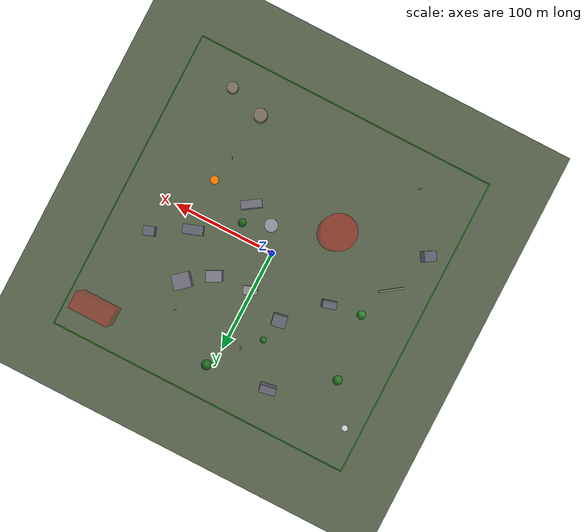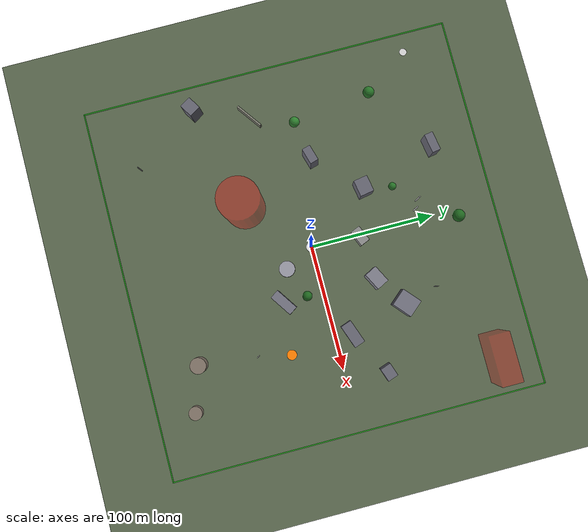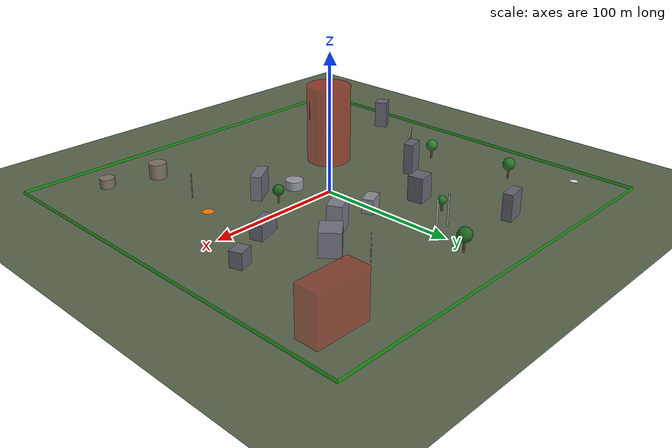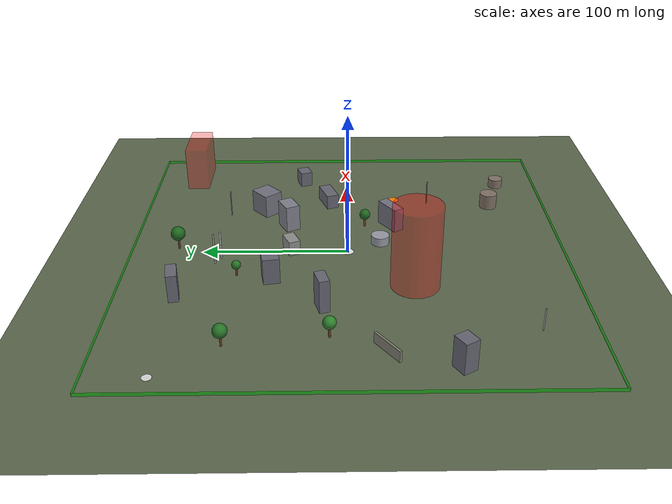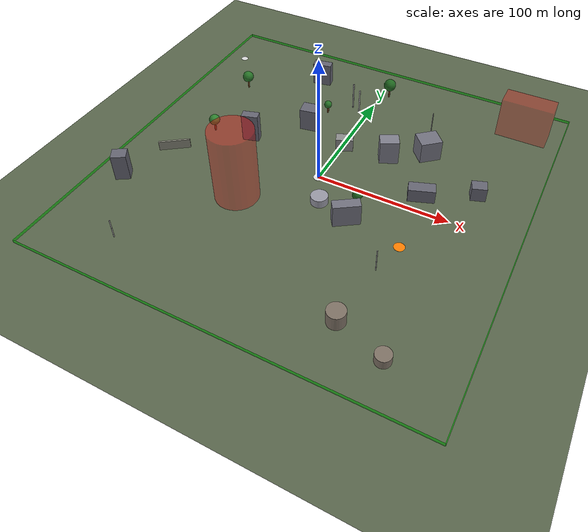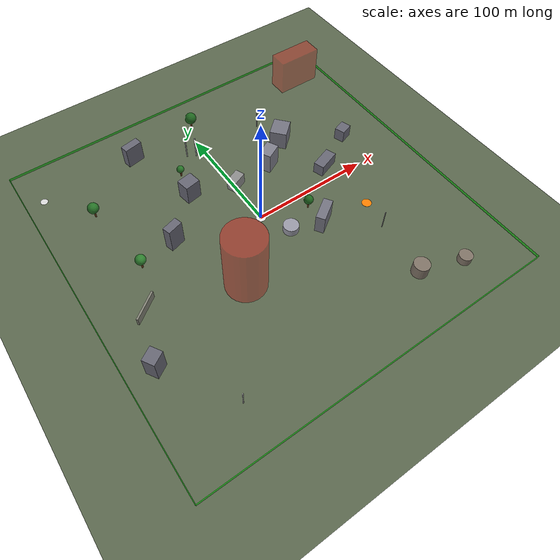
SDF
<?xml version="1.0" ?>
<sdf version="1.9">
  <!--
  Generated World: training_variant_011
  Seed: 53
  Difficulty: medium
  Obstacles: 24
  NFZs: 2
  Generated: 2025-12-27T10:39:35.583986
  Generator: Flyby F-11 World Generator v1.0.0
-->
  <world name="training_variant_011">
    <physics name="training_physics" type="ode">
      <max_step_size>0.001</max_step_size>
      <real_time_factor>1.0</real_time_factor>
      <real_time_update_rate>1000</real_time_update_rate>
      <ode>
        <solver>
          <type>quick</type>
          <iters>50</iters>
          <sor>1.3</sor>
        </solver>
        <constraints>
          <cfm>0.0</cfm>
          <erp>0.2</erp>
        </constraints>
      </ode>
    </physics>
    <plugin filename="gz-sim-physics-system" name="gz::sim::systems::Physics"/>
    <plugin filename="gz-sim-sensors-system" name="gz::sim::systems::Sensors">
      <render_engine>ogre2</render_engine>
    </plugin>
    <plugin filename="gz-sim-scene-broadcaster-system" name="gz::sim::systems::SceneBroadcaster"/>
    <plugin filename="gz-sim-user-commands-system" name="gz::sim::systems::UserCommands"/>
    <plugin filename="gz-sim-imu-system" name="gz::sim::systems::Imu"/>
    <plugin filename="gz-sim-air-pressure-system" name="gz::sim::systems::AirPressure"/>
    <plugin filename="gz-sim-magnetometer-system" name="gz::sim::systems::Magnetometer"/>
    <plugin filename="gz-sim-navsat-system" name="gz::sim::systems::NavSat"/>
    <plugin filename="gz-sim-contact-system" name="gz::sim::systems::Contact"/>
    <plugin filename="gz-sim-wind-effects-system" name="gz::sim::systems::WindEffects">
      <force_approximation_scaling_factor>1.0</force_approximation_scaling_factor>
    </plugin>
    <atmosphere type="adiabatic">
      <temperature>288.15</temperature>
      <pressure>101325</pressure>
      <mass_density>1.225</mass_density>
    </atmosphere>
    <wind>
      <linear_velocity>4.860900360746789 -0.9096997503502364 0</linear_velocity>
    </wind>
    <spherical_coordinates>
      <surface_model>EARTH_WGS84</surface_model>
      <world_frame_orientation>ENU</world_frame_orientation>
      <latitude_deg>33.3853</latitude_deg>
      <longitude_deg>-117.5653</longitude_deg>
      <elevation>100</elevation>
      <heading_deg>0</heading_deg>
    </spherical_coordinates>
    <scene>
      <ambient>0.5 0.5 0.52 1</ambient>
      <background>0.6 0.6 0.65 1</background>
      <shadows>true</shadows>
      <grid>false</grid>
    </scene>
    <light type="directional" name="sun">
      <cast_shadows>true</cast_shadows>
      <pose>0 0 100 0 0 0</pose>
      <diffuse>0.5 0.5 0.55 1</diffuse>
      <specular>0.05 0.05 0.05 1</specular>
      <attenuation>
        <range>1000</range>
        <constant>0.9</constant>
        <linear>0.01</linear>
        <quadratic>0.001</quadratic>
      </attenuation>
      <direction>-0.3 0.0 -0.95</direction>
    </light>
    <model name="ground_plane">
      <static>true</static>
      <link name="link">
        <collision name="collision">
          <geometry>
            <plane>
              <normal>0 0 1</normal>
              <size>500 500</size>
            </plane>
          </geometry>
          <surface>
            <friction>
              <ode>
                <mu>100</mu>
                <mu2>50</mu2>
              </ode>
            </friction>
          </surface>
        </collision>
        <visual name="visual">
          <geometry>
            <plane>
              <normal>0 0 1</normal>
              <size>500 500</size>
            </plane>
          </geometry>
          <material>
            <ambient>0.35 0.4 0.3 1</ambient>
            <diffuse>0.35 0.4 0.3 1</diffuse>
          </material>
        </visual>
      </link>
    </model>
    <model name="geofence_north">
      <static>true</static>
      <pose>0 150.0 1 0 0 0</pose>
      <link name="link">
        <visual name="visual">
          <geometry>
            <box>
              <size>300.0 0.5 2</size>
            </box>
          </geometry>
          <material>
            <ambient>0 0.8 0 0.6</ambient>
            <diffuse>0 0.8 0 0.6</diffuse>
            <emissive>0 0.2 0 1</emissive>
          </material>
        </visual>
      </link>
    </model>
    <model name="geofence_south">
      <static>true</static>
      <pose>0 -150.0 1 0 0 0</pose>
      <link name="link">
        <visual name="visual">
          <geometry>
            <box>
              <size>300.0 0.5 2</size>
            </box>
          </geometry>
          <material>
            <ambient>0 0.8 0 0.6</ambient>
            <diffuse>0 0.8 0 0.6</diffuse>
            <emissive>0 0.2 0 1</emissive>
          </material>
        </visual>
      </link>
    </model>
    <model name="geofence_east">
      <static>true</static>
      <pose>150.0 0 1 0 0 0</pose>
      <link name="link">
        <visual name="visual">
          <geometry>
            <box>
              <size>0.5 300.0 2</size>
            </box>
          </geometry>
          <material>
            <ambient>0 0.8 0 0.6</ambient>
            <diffuse>0 0.8 0 0.6</diffuse>
            <emissive>0 0.2 0 1</emissive>
          </material>
        </visual>
      </link>
    </model>
    <model name="geofence_west">
      <static>true</static>
      <pose>-150.0 0 1 0 0 0</pose>
      <link name="link">
        <visual name="visual">
          <geometry>
            <box>
              <size>0.5 300.0 2</size>
            </box>
          </geometry>
          <material>
            <ambient>0 0.8 0 0.6</ambient>
            <diffuse>0 0.8 0 0.6</diffuse>
            <emissive>0 0.2 0 1</emissive>
          </material>
        </visual>
      </link>
    </model>
    <model name="nfz_0_volume">
      <static>true</static>
      <pose>119.81907579319137 117.8077624664382 16.410086100990988 0 0 0</pose>
      <link name="link">
        <visual name="visual">
          <geometry>
            <box>
              <size>38.690831125083236 16.396478807747922 32.820172201981975</size>
            </box>
          </geometry>
          <material>
            <ambient>1 0 0 0.30000000000000004</ambient>
            <diffuse>1 0 0 0.30000000000000004</diffuse>
          </material>
        </visual>
      </link>
    </model>
    <model name="nfz_1_volume">
      <static>true</static>
      <pose>-43.12063186510416 -43.09219478059349 29.197502244403942 0 0 0</pose>
      <link name="link">
        <visual name="visual">
          <geometry>
            <cylinder>
              <radius>16.319459696821163</radius>
              <length>58.395004488807885</length>
            </cylinder>
          </geometry>
          <material>
            <ambient>1 0 0 0.35000000000000003</ambient>
            <diffuse>1 0 0 0.35000000000000003</diffuse>
          </material>
        </visual>
      </link>
    </model>
    <model name="obstacle_building_0">
      <static>true</static>
      <pose>61.608266361428434 60.07814140728067 8.42475853537022 0 0 0.7157476047398533</pose>
      <link name="link">
        <visual name="visual">
          <geometry>
            <box>
              <size>16.536857111695035 14.432831730404095 16.84951707074044</size>
            </box>
          </geometry>
          <material>
            <ambient>0.45 0.45 0.5 1.0</ambient>
            <diffuse>0.45 0.45 0.5 1.0</diffuse>
          </material>
        </visual>
        <collision name="collision">
          <geometry>
            <box>
              <size>16.536857111695035 14.432831730404095 16.84951707074044</size>
            </box>
          </geometry>
        </collision>
      </link>
    </model>
    <model name="obstacle_tank_1">
      <static>true</static>
      <pose>102.5505160129756 -119.52597884871443 3.3970949037596143 0 0 0.0</pose>
      <link name="link">
        <visual name="visual">
          <geometry>
            <cylinder>
              <radius>5.375048302018703</radius>
              <length>6.794189807519229</length>
            </cylinder>
          </geometry>
          <material>
            <ambient>0.5 0.45 0.4 1.0</ambient>
            <diffuse>0.5 0.45 0.4 1.0</diffuse>
          </material>
        </visual>
        <collision name="collision">
          <geometry>
            <cylinder>
              <radius>5.375048302018703</radius>
              <length>6.794189807519229</length>
            </cylinder>
          </geometry>
        </collision>
      </link>
    </model>
    <model name="obstacle_building_2">
      <static>true</static>
      <pose>2.0110238378618988 39.213941318960536 5.17468710232682 0 0 0.40178330359084236</pose>
      <link name="link">
        <visual name="visual">
          <geometry>
            <box>
              <size>13.290995883781259 8.059333034893665 10.34937420465364</size>
            </box>
          </geometry>
          <material>
            <ambient>0.55 0.55 0.55 1.0</ambient>
            <diffuse>0.55 0.55 0.55 1.0</diffuse>
          </material>
        </visual>
        <collision name="collision">
          <geometry>
            <box>
              <size>13.290995883781259 8.059333034893665 10.34937420465364</size>
            </box>
          </geometry>
        </collision>
      </link>
    </model>
    <model name="obstacle_building_3">
      <static>true</static>
      <pose>74.44807370472245 13.826433756692666 5.302376384059566 0 0 0.34512397335980083</pose>
      <link name="link">
        <visual name="visual">
          <geometry>
            <box>
              <size>19.295402740396746 8.990592259950464 10.604752768119132</size>
            </box>
          </geometry>
          <material>
            <ambient>0.4 0.4 0.45 1.0</ambient>
            <diffuse>0.4 0.4 0.45 1.0</diffuse>
          </material>
        </visual>
        <collision name="collision">
          <geometry>
            <box>
              <size>19.295402740396746 8.990592259950464 10.604752768119132</size>
            </box>
          </geometry>
        </collision>
      </link>
    </model>
    <model name="obstacle_pole_4">
      <static>true</static>
      <pose>-14.616612662321614 90.28783693584194 11.29453558667725 0 0 0.0</pose>
      <link name="link">
        <visual name="visual">
          <geometry>
            <cylinder>
              <radius>0.5331058595074797</radius>
              <length>22.5890711733545</length>
            </cylinder>
          </geometry>
          <material>
            <ambient>0.65 0.65 0.65 1.0</ambient>
            <diffuse>0.65 0.65 0.65 1.0</diffuse>
          </material>
        </visual>
        <collision name="collision">
          <geometry>
            <cylinder>
              <radius>0.5331058595074797</radius>
              <length>22.5890711733545</length>
            </cylinder>
          </geometry>
        </collision>
      </link>
    </model>
    <model name="obstacle_tank_5">
      <static>true</static>
      <pose>67.51434082729043 -108.1079146131677 5.516387996705905 0 0 0.0</pose>
      <link name="link">
        <visual name="visual">
          <geometry>
            <cylinder>
              <radius>6.368759869269907</radius>
              <length>11.03277599341181</length>
            </cylinder>
          </geometry>
          <material>
            <ambient>0.5 0.45 0.4 1.0</ambient>
            <diffuse>0.5 0.45 0.4 1.0</diffuse>
          </material>
        </visual>
        <collision name="collision">
          <geometry>
            <cylinder>
              <radius>6.368759869269907</radius>
              <length>11.03277599341181</length>
            </cylinder>
          </geometry>
        </collision>
      </link>
    </model>
    <model name="obstacle_wall_6">
      <static>true</static>
      <pose>-113.75856720396794 -21.270017175769198 3.7709058352163676 0 0 0.6256711962694244</pose>
      <link name="link">
        <visual name="visual">
          <geometry>
            <box>
              <size>23.76689825911854 1.5482638130177913 7.541811670432735</size>
            </box>
          </geometry>
          <material>
            <ambient>0.5 0.5 0.45 1.0</ambient>
            <diffuse>0.5 0.5 0.45 1.0</diffuse>
          </material>
        </visual>
        <collision name="collision">
          <geometry>
            <box>
              <size>23.76689825911854 1.5482638130177913 7.541811670432735</size>
            </box>
          </geometry>
        </collision>
      </link>
    </model>
    <model name="obstacle_tree_7">
      <static>true</static>
      <pose>6.239547863991618 117.8460707905652 0 0 0 0.0</pose>
      <link name="link">
        <visual name="trunk">
          <pose>0 0 4.422929701693901 0 0 0</pose>
          <geometry>
            <cylinder>
              <radius>0.6922431365371942</radius>
              <length>8.845859403387802</length>
            </cylinder>
          </geometry>
          <material>
            <ambient>0.38 0.22 0.08 1.0</ambient>
            <diffuse>0.38 0.22 0.08 1.0</diffuse>
          </material>
        </visual>
        <visual name="canopy">
          <pose>0 0 11.82923169042134 0 0 0</pose>
          <geometry>
            <sphere>
              <radius>4.972287145055896</radius>
            </sphere>
          </geometry>
          <material>
            <ambient>0.12 0.4 0.12 1.0</ambient>
            <diffuse>0.12 0.4 0.12 1.0</diffuse>
          </material>
        </visual>
        <collision name="collision">
          <pose>0 0 9.395216846749797 0 0 0</pose>
          <geometry>
            <cylinder>
              <radius>4.972287145055896</radius>
              <length>18.790433693499594</length>
            </cylinder>
          </geometry>
        </collision>
      </link>
    </model>
    <model name="obstacle_building_8">
      <static>true</static>
      <pose>-53.866644110794724 111.92696065927143 9.545964882523798 0 0 0.17978061153353173</pose>
      <link name="link">
        <visual name="visual">
          <geometry>
            <box>
              <size>15.238997218203021 6.8691264961808844 19.091929765047595</size>
            </box>
          </geometry>
          <material>
            <ambient>0.4 0.4 0.45 1.0</ambient>
            <diffuse>0.4 0.4 0.45 1.0</diffuse>
          </material>
        </visual>
        <collision name="collision">
          <geometry>
            <box>
              <size>15.238997218203021 6.8691264961808844 19.091929765047595</size>
            </box>
          </geometry>
        </collision>
      </link>
    </model>
    <model name="obstacle_building_9">
      <static>true</static>
      <pose>109.8007677984287 33.36819911703864 5.626663945798909 0 0 0.3346379710743986</pose>
      <link name="link">
        <visual name="visual">
          <geometry>
            <box>
              <size>10.85228296463404 8.799890280612086 11.253327891597818</size>
            </box>
          </geometry>
          <material>
            <ambient>0.4 0.4 0.45 1.0</ambient>
            <diffuse>0.4 0.4 0.45 1.0</diffuse>
          </material>
        </visual>
        <collision name="collision">
          <geometry>
            <box>
              <size>10.85228296463404 8.799890280612086 11.253327891597818</size>
            </box>
          </geometry>
        </collision>
      </link>
    </model>
    <model name="obstacle_pole_10">
      <static>true</static>
      <pose>72.60279634420502 -61.31435777602037 9.160518204190167 0 0 0.0</pose>
      <link name="link">
        <visual name="visual">
          <geometry>
            <cylinder>
              <radius>0.36515546939099697</radius>
              <length>18.321036408380333</length>
            </cylinder>
          </geometry>
          <material>
            <ambient>0.7 0.7 0.7 1.0</ambient>
            <diffuse>0.7 0.7 0.7 1.0</diffuse>
          </material>
        </visual>
        <collision name="collision">
          <geometry>
            <cylinder>
              <radius>0.36515546939099697</radius>
              <length>18.321036408380333</length>
            </cylinder>
          </geometry>
        </collision>
      </link>
    </model>
    <model name="obstacle_building_11">
      <static>true</static>
      <pose>-67.95120868011612 17.045637541620607 11.425585930034597 0 0 0.2823512719812024</pose>
      <link name="link">
        <visual name="visual">
          <geometry>
            <box>
              <size>12.930201550592775 6.866953451541797 22.851171860069194</size>
            </box>
          </geometry>
          <material>
            <ambient>0.4 0.4 0.45 1.0</ambient>
            <diffuse>0.4 0.4 0.45 1.0</diffuse>
          </material>
        </visual>
        <collision name="collision">
          <geometry>
            <box>
              <size>12.930201550592775 6.866953451541797 22.851171860069194</size>
            </box>
          </geometry>
        </collision>
      </link>
    </model>
    <model name="obstacle_pole_12">
      <static>true</static>
      <pose>-7.5793262181643115 86.81758118939459 10.349045865840303 0 0 0.0</pose>
      <link name="link">
        <visual name="visual">
          <geometry>
            <cylinder>
              <radius>0.5378067439584823</radius>
              <length>20.698091731680606</length>
            </cylinder>
          </geometry>
          <material>
            <ambient>0.75 0.75 0.75 1.0</ambient>
            <diffuse>0.75 0.75 0.75 1.0</diffuse>
          </material>
        </visual>
        <collision name="collision">
          <geometry>
            <cylinder>
              <radius>0.5378067439584823</radius>
              <length>20.698091731680606</length>
            </cylinder>
          </geometry>
        </collision>
      </link>
    </model>
    <model name="obstacle_building_13">
      <static>true</static>
      <pose>37.16111998031366 -31.579420126100572 8.707544462651065 0 0 0.591706496968713</pose>
      <link name="link">
        <visual name="visual">
          <geometry>
            <box>
              <size>19.63996736629393 7.634496117520732 17.41508892530213</size>
            </box>
          </geometry>
          <material>
            <ambient>0.45 0.45 0.5 1.0</ambient>
            <diffuse>0.45 0.45 0.5 1.0</diffuse>
          </material>
        </visual>
        <collision name="collision">
          <geometry>
            <box>
              <size>19.63996736629393 7.634496117520732 17.41508892530213</size>
            </box>
          </geometry>
        </collision>
      </link>
    </model>
    <model name="obstacle_building_14">
      <static>true</static>
      <pose>37.09319249059658 42.36388746679137 9.621728526706415 0 0 0.47403992390117516</pose>
      <link name="link">
        <visual name="visual">
          <geometry>
            <box>
              <size>14.383533399897393 10.320670130215772 19.24345705341283</size>
            </box>
          </geometry>
          <material>
            <ambient>0.5 0.5 0.55 1.0</ambient>
            <diffuse>0.5 0.5 0.55 1.0</diffuse>
          </material>
        </visual>
        <collision name="collision">
          <geometry>
            <box>
              <size>14.383533399897393 10.320670130215772 19.24345705341283</size>
            </box>
          </geometry>
        </collision>
      </link>
    </model>
    <model name="obstacle_building_15">
      <static>true</static>
      <pose>-128.66783792945537 -63.803684148789216 10.431159784753104 0 0 0.5482801068160926</pose>
      <link name="link">
        <visual name="visual">
          <geometry>
            <box>
              <size>10.97091665232414 9.728179574034042 20.86231956950621</size>
            </box>
          </geometry>
          <material>
            <ambient>0.4 0.4 0.45 1.0</ambient>
            <diffuse>0.4 0.4 0.45 1.0</diffuse>
          </material>
        </visual>
        <collision name="collision">
          <geometry>
            <box>
              <size>10.97091665232414 9.728179574034042 20.86231956950621</size>
            </box>
          </geometry>
        </collision>
      </link>
    </model>
    <model name="obstacle_tree_16">
      <static>true</static>
      <pose>-29.781676385877347 74.13522729472527 0 0 0 0.0</pose>
      <link name="link">
        <visual name="trunk">
          <pose>0 0 3.094716456260445 0 0 0</pose>
          <geometry>
            <cylinder>
              <radius>0.694746179512373</radius>
              <length>6.18943291252089</length>
            </cylinder>
          </geometry>
          <material>
            <ambient>0.38 0.22 0.08 1.0</ambient>
            <diffuse>0.38 0.22 0.08 1.0</diffuse>
          </material>
        </visual>
        <visual name="canopy">
          <pose>0 0 8.054256647052242 0 0 0</pose>
          <geometry>
            <sphere>
              <radius>3.1080395575522526</radius>
            </sphere>
          </geometry>
          <material>
            <ambient>0.15 0.45 0.15 1.0</ambient>
            <diffuse>0.15 0.45 0.15 1.0</diffuse>
          </material>
        </visual>
        <collision name="collision">
          <pose>0 0 6.202756013812698 0 0 0</pose>
          <geometry>
            <cylinder>
              <radius>3.1080395575522526</radius>
              <length>12.405512027625395</length>
            </cylinder>
          </geometry>
        </collision>
      </link>
    </model>
    <model name="obstacle_tree_17">
      <static>true</static>
      <pose>-107.05197794171076 75.33246104212577 0 0 0 0.0</pose>
      <link name="link">
        <visual name="trunk">
          <pose>0 0 4.091573249904827 0 0 0</pose>
          <geometry>
            <cylinder>
              <radius>0.6425513708798758</radius>
              <length>8.183146499809654</length>
            </cylinder>
          </geometry>
          <material>
            <ambient>0.4 0.25 0.1 1.0</ambient>
            <diffuse>0.4 0.25 0.1 1.0</diffuse>
          </material>
        </visual>
        <visual name="canopy">
          <pose>0 0 10.920529038678218 0 0 0</pose>
          <geometry>
            <sphere>
              <radius>4.562304231447607</radius>
            </sphere>
          </geometry>
          <material>
            <ambient>0.15 0.45 0.15 1.0</ambient>
            <diffuse>0.15 0.45 0.15 1.0</diffuse>
          </material>
        </visual>
        <collision name="collision">
          <pose>0 0 8.653877481352435 0 0 0</pose>
          <geometry>
            <cylinder>
              <radius>4.562304231447607</radius>
              <length>17.30775496270487</length>
            </cylinder>
          </geometry>
        </collision>
      </link>
    </model>
    <model name="obstacle_tank_18">
      <static>true</static>
      <pose>12.339955651571216 -22.906401190559592 3.156473399910508 0 0 0.0</pose>
      <link name="link">
        <visual name="visual">
          <geometry>
            <cylinder>
              <radius>6.330062746574239</radius>
              <length>6.312946799821016</length>
            </cylinder>
          </geometry>
          <material>
            <ambient>0.6 0.6 0.65 1.0</ambient>
            <diffuse>0.6 0.6 0.65 1.0</diffuse>
          </material>
        </visual>
        <collision name="collision">
          <geometry>
            <cylinder>
              <radius>6.330062746574239</radius>
              <length>6.312946799821016</length>
            </cylinder>
          </geometry>
        </collision>
      </link>
    </model>
    <model name="obstacle_tree_19">
      <static>true</static>
      <pose>-98.89143914821766 12.157584970686656 0 0 0 0.0</pose>
      <link name="link">
        <visual name="trunk">
          <pose>0 0 3.8703481077030086 0 0 0</pose>
          <geometry>
            <cylinder>
              <radius>0.7400534422511307</radius>
              <length>7.740696215406017</length>
            </cylinder>
          </geometry>
          <material>
            <ambient>0.4 0.25 0.1 1.0</ambient>
            <diffuse>0.4 0.25 0.1 1.0</diffuse>
          </material>
        </visual>
        <visual name="canopy">
          <pose>0 0 10.271501937703581 0 0 0</pose>
          <geometry>
            <sphere>
              <radius>4.218009537162606</radius>
            </sphere>
          </geometry>
          <material>
            <ambient>0.18 0.5 0.18 1.0</ambient>
            <diffuse>0.18 0.5 0.18 1.0</diffuse>
          </material>
        </visual>
        <collision name="collision">
          <pose>0 0 8.088357644865615 0 0 0</pose>
          <geometry>
            <cylinder>
              <radius>4.218009537162606</radius>
              <length>16.17671528973123</length>
            </cylinder>
          </geometry>
        </collision>
      </link>
    </model>
    <model name="obstacle_pole_20">
      <static>true</static>
      <pose>55.17809853932738 86.51841839301716 9.903323472825244 0 0 0.0</pose>
      <link name="link">
        <visual name="visual">
          <geometry>
            <cylinder>
              <radius>0.3361420950646077</radius>
              <length>19.80664694565049</length>
            </cylinder>
          </geometry>
          <material>
            <ambient>0.75 0.75 0.75 1.0</ambient>
            <diffuse>0.75 0.75 0.75 1.0</diffuse>
          </material>
        </visual>
        <collision name="collision">
          <geometry>
            <cylinder>
              <radius>0.3361420950646077</radius>
              <length>19.80664694565049</length>
            </cylinder>
          </geometry>
        </collision>
      </link>
    </model>
    <model name="obstacle_tree_21">
      <static>true</static>
      <pose>36.90996767983103 -12.755177849468154 0 0 0 0.0</pose>
      <link name="link">
        <visual name="trunk">
          <pose>0 0 3.6298827768410575 0 0 0</pose>
          <geometry>
            <cylinder>
              <radius>0.7196318254807961</radius>
              <length>7.259765553682115</length>
            </cylinder>
          </geometry>
          <material>
            <ambient>0.42 0.27 0.12 1.0</ambient>
            <diffuse>0.42 0.27 0.12 1.0</diffuse>
          </material>
        </visual>
        <visual name="canopy">
          <pose>0 0 9.589314778548134 0 0 0</pose>
          <geometry>
            <sphere>
              <radius>3.8825820414433645</radius>
            </sphere>
          </geometry>
          <material>
            <ambient>0.12 0.4 0.12 1.0</ambient>
            <diffuse>0.12 0.4 0.12 1.0</diffuse>
          </material>
        </visual>
        <collision name="collision">
          <pose>0 0 7.512464818284422 0 0 0</pose>
          <geometry>
            <cylinder>
              <radius>3.8825820414433645</radius>
              <length>15.024929636568844</length>
            </cylinder>
          </geometry>
        </collision>
      </link>
    </model>
    <model name="obstacle_building_22">
      <static>true</static>
      <pose>-34.43579971030509 51.30908640350802 9.09193080660928 0 0 0.17372017680329252</pose>
      <link name="link">
        <visual name="visual">
          <geometry>
            <box>
              <size>13.129208785054043 11.224982270472708 18.18386161321856</size>
            </box>
          </geometry>
          <material>
            <ambient>0.4 0.4 0.45 1.0</ambient>
            <diffuse>0.4 0.4 0.45 1.0</diffuse>
          </material>
        </visual>
        <collision name="collision">
          <geometry>
            <box>
              <size>13.129208785054043 11.224982270472708 18.18386161321856</size>
            </box>
          </geometry>
        </collision>
      </link>
    </model>
    <model name="obstacle_pole_23">
      <static>true</static>
      <pose>-94.00573324561955 -115.6222442071212 7.888556209901738 0 0 0.0</pose>
      <link name="link">
        <visual name="visual">
          <geometry>
            <cylinder>
              <radius>0.3840432628771821</radius>
              <length>15.777112419803476</length>
            </cylinder>
          </geometry>
          <material>
            <ambient>0.7 0.7 0.7 1.0</ambient>
            <diffuse>0.7 0.7 0.7 1.0</diffuse>
          </material>
        </visual>
        <collision name="collision">
          <geometry>
            <cylinder>
              <radius>0.3840432628771821</radius>
              <length>15.777112419803476</length>
            </cylinder>
          </geometry>
        </collision>
      </link>
    </model>
    <model name="lz_primary">
      <static>true</static>
      <pose>0 0 0.02 0 0 0</pose>
      <link name="link">
        <visual name="pad">
          <geometry>
            <cylinder>
              <radius>4.0</radius>
              <length>0.04</length>
            </cylinder>
          </geometry>
          <material>
            <ambient>0.9 0.9 0.9 1</ambient>
            <diffuse>0.9 0.9 0.9 1</diffuse>
          </material>
        </visual>
        <visual name="H_v">
          <pose>0 0 0.02 0 0 0</pose>
          <geometry>
            <box>
              <size>0.6 2.5 0.01</size>
            </box>
          </geometry>
          <material>
            <ambient>0 0 0.8 1</ambient>
            <diffuse>0 0 0.8 1</diffuse>
          </material>
        </visual>
        <visual name="H_h">
          <pose>0 0 0.02 0 0 0</pose>
          <geometry>
            <box>
              <size>2.5 0.6 0.01</size>
            </box>
          </geometry>
          <material>
            <ambient>0 0 0.8 1</ambient>
            <diffuse>0 0 0.8 1</diffuse>
          </material>
        </visual>
      </link>
    </model>
    <model name="lz_secondary">
      <static>true</static>
      <pose>-135.07306820727064 112.95577068029328 0.02 0 0 0</pose>
      <link name="link">
        <visual name="pad">
          <geometry>
            <cylinder>
              <radius>3.0</radius>
              <length>0.04</length>
            </cylinder>
          </geometry>
          <material>
            <ambient>0.85 0.85 0.85 1</ambient>
            <diffuse>0.85 0.85 0.85 1</diffuse>
          </material>
        </visual>
      </link>
    </model>
    <model name="lz_emergency">
      <static>true</static>
      <pose>78.5941696448686 -36.361969950365776 0.02 0 0 0</pose>
      <link name="link">
        <visual name="pad">
          <geometry>
            <cylinder>
              <radius>4.0</radius>
              <length>0.04</length>
            </cylinder>
          </geometry>
          <material>
            <ambient>1 0.5 0 1</ambient>
            <diffuse>1 0.5 0 1</diffuse>
          </material>
        </visual>
      </link>
    </model>
    <include>
      <uri>model://iris_with_ardupilot</uri>
      <name>iris</name>
      <pose>0 0 0.5 0 0 0</pose>
    </include>
  </world>
</sdf>

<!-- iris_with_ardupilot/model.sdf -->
<sdf version="1.9">
  <model name="iris_with_ardupilot">
    <pose>0 0 0.2 0 0 0</pose>

    <link name="base_link">
      <inertial>
        <mass>1.5</mass>
        <inertia>
          <ixx>0.029125</ixx>
          <ixy>0</ixy>
          <ixz>0</ixz>
          <iyy>0.029125</iyy>
          <iyz>0</iyz>
          <izz>0.055225</izz>
        </inertia>
      </inertial>

      <visual name="body_visual">
        <geometry>
          <box>
            <size>0.47 0.47 0.11</size>
          </box>
        </geometry>
        <material>
          <ambient>0.2 0.2 0.2 1</ambient>
          <diffuse>0.2 0.2 0.2 1</diffuse>
        </material>
      </visual>

      <!-- Center marker for orientation (green = forward) -->
      <visual name="center_marker">
        <pose>0.15 0 0 0 0 0</pose>
        <geometry>
          <sphere>
            <radius>0.05</radius>
          </sphere>
        </geometry>
        <material>
          <ambient>0 1 0 1</ambient>
          <diffuse>0 1 0 1</diffuse>
        </material>
      </visual>

      <collision name="collision">
        <geometry>
          <box>
            <size>0.47 0.47 0.11</size>
          </box>
        </geometry>
      </collision>

      <!-- GPS/NavSat Sensor                -->
      <!-- Consumer-grade GPS accuracy      -->
      <sensor name="navsat_sensor" type="navsat">
        <always_on>1</always_on>
        <update_rate>10</update_rate>
        <topic>gps</topic>
        <navsat>
          <position_sensing>
            <horizontal>
              <noise type="gaussian">
                <mean>0.0</mean>
                <stddev>0.5</stddev>
              </noise>
            </horizontal>
            <vertical>
              <noise type="gaussian">
                <mean>0.0</mean>
                <stddev>1.0</stddev>
              </noise>
            </vertical>
          </position_sensing>
          <velocity_sensing>
            <horizontal>
              <noise type="gaussian">
                <mean>0.0</mean>
                <stddev>0.05</stddev>
              </noise>
            </horizontal>
            <vertical>
              <noise type="gaussian">
                <mean>0.0</mean>
                <stddev>0.1</stddev>
              </noise>
            </vertical>
          </velocity_sensing>
        </navsat>
      </sensor>

      <!-- Magnetometer Sensor              -->
      <!-- Earth magnetic field sensing     -->
      <!-- Declination: ~11.5 deg E (San Diego) -->
      <sensor name="magnetometer_sensor" type="magnetometer">
        <always_on>1</always_on>
        <update_rate>50</update_rate>
        <topic>magnetometer</topic>
        <magnetometer>
          <x>
            <noise type="gaussian">
              <mean>0</mean>
              <stddev>0.001</stddev>
              <bias_mean>0.00001</bias_mean>
              <bias_stddev>0.000002</bias_stddev>
            </noise>
          </x>
          <y>
            <noise type="gaussian">
              <mean>0</mean>
              <stddev>0.001</stddev>
              <bias_mean>0.00001</bias_mean>
              <bias_stddev>0.000002</bias_stddev>
            </noise>
          </y>
          <z>
            <noise type="gaussian">
              <mean>0</mean>
              <stddev>0.001</stddev>
              <bias_mean>0.00001</bias_mean>
              <bias_stddev>0.000002</bias_stddev>
            </noise>
          </z>
        </magnetometer>
      </sensor>

      <!-- Barometer Sensor                 -->
      <!-- Atmospheric pressure sensing     -->
      <!-- ~8.3 Pa per meter at sea level   -->
      <sensor name="air_pressure_sensor" type="air_pressure">
        <always_on>1</always_on>
        <update_rate>20</update_rate>
        <topic>air_pressure</topic>
        <air_pressure>
          <reference_altitude>0</reference_altitude>
          <pressure>
            <noise type="gaussian">
              <mean>0</mean>
              <stddev>10</stddev>
            </noise>
          </pressure>
        </air_pressure>
      </sensor>

    </link>

    <!-- Rotor 0 (Front Right, CW)        -->
    <link name="rotor_0">
      <pose>0.13 -0.22 0.023 0 0 0</pose>
      <inertial>
        <mass>0.005</mass>
        <inertia>
          <ixx>9.75e-07</ixx>
          <ixy>0</ixy>
          <ixz>0</ixz>
          <iyy>0.000166704</iyy>
          <iyz>0</iyz>
          <izz>0.000167604</izz>
        </inertia>
      </inertial>
      <visual name="visual">
        <geometry>
          <cylinder>
            <radius>0.128</radius>
            <length>0.005</length>
          </cylinder>
        </geometry>
        <material>
          <ambient>1 0 0 1</ambient>
          <diffuse>1 0 0 1</diffuse>
        </material>
      </visual>
    </link>

    <!-- Rotor 1 (Back Left, CW)          -->
    <link name="rotor_1">
      <pose>-0.13 0.2 0.023 0 0 0</pose>
      <inertial>
        <mass>0.005</mass>
        <inertia>
          <ixx>9.75e-07</ixx>
          <ixy>0</ixy>
          <ixz>0</ixz>
          <iyy>0.000166704</iyy>
          <iyz>0</iyz>
          <izz>0.000167604</izz>
        </inertia>
      </inertial>
      <visual name="visual">
        <geometry>
          <cylinder>
            <radius>0.128</radius>
            <length>0.005</length>
          </cylinder>
        </geometry>
        <material>
          <ambient>1 0 0 1</ambient>
          <diffuse>1 0 0 1</diffuse>
        </material>
      </visual>
    </link>

    <!-- Rotor 2 (Front Left, CCW)        -->
    <link name="rotor_2">
      <pose>0.13 0.22 0.023 0 0 0</pose>
      <inertial>
        <mass>0.005</mass>
        <inertia>
          <ixx>9.75e-07</ixx>
          <ixy>0</ixy>
          <ixz>0</ixz>
          <iyy>0.000166704</iyy>
          <iyz>0</iyz>
          <izz>0.000167604</izz>
        </inertia>
      </inertial>
      <visual name="visual">
        <geometry>
          <cylinder>
            <radius>0.128</radius>
            <length>0.005</length>
          </cylinder>
        </geometry>
        <material>
          <ambient>0 0 1 1</ambient>
          <diffuse>0 0 1 1</diffuse>
        </material>
      </visual>
    </link>

    <!-- Rotor 3 (Back Right, CCW)        -->
    <link name="rotor_3">
      <pose>-0.13 -0.2 0.023 0 0 0</pose>
      <inertial>
        <mass>0.005</mass>
        <inertia>
          <ixx>9.75e-07</ixx>
          <ixy>0</ixy>
          <ixz>0</ixz>
          <iyy>0.000166704</iyy>
          <iyz>0</iyz>
          <izz>0.000167604</izz>
        </inertia>
      </inertial>
      <visual name="visual">
        <geometry>
          <cylinder>
            <radius>0.128</radius>
            <length>0.005</length>
          </cylinder>
        </geometry>
        <material>
          <ambient>0 0 1 1</ambient>
          <diffuse>0 0 1 1</diffuse>
        </material>
      </visual>
    </link>

    <!-- Rotor joints -->
    <joint name="rotor_0_joint" type="revolute">
      <parent>base_link</parent>
      <child>rotor_0</child>
      <axis>
        <xyz>0 0 1</xyz>
        <limit>
          <lower>-1e16</lower>
          <upper>1e16</upper>
        </limit>
      </axis>
    </joint>

    <joint name="rotor_1_joint" type="revolute">
      <parent>base_link</parent>
      <child>rotor_1</child>
      <axis>
        <xyz>0 0 1</xyz>
        <limit>
          <lower>-1e16</lower>
          <upper>1e16</upper>
        </limit>
      </axis>
    </joint>

    <joint name="rotor_2_joint" type="revolute">
      <parent>base_link</parent>
      <child>rotor_2</child>
      <axis>
        <xyz>0 0 1</xyz>
        <limit>
          <lower>-1e16</lower>
          <upper>1e16</upper>
        </limit>
      </axis>
    </joint>

    <joint name="rotor_3_joint" type="revolute">
      <parent>base_link</parent>
      <child>rotor_3</child>
      <axis>
        <xyz>0 0 1</xyz>
        <limit>
          <lower>-1e16</lower>
          <upper>1e16</upper>
        </limit>
      </axis>
    </joint>

    <!-- IMU Sensor Link                  -->
    <!-- 250Hz MEMS IMU with noise        -->
    <link name="imu_link">
      <pose>0 0 0 0 0 0</pose>
      <inertial>
        <mass>0.001</mass>
        <inertia>
          <ixx>1e-05</ixx>
          <ixy>0</ixy>
          <ixz>0</ixz>
          <iyy>1e-05</iyy>
          <iyz>0</iyz>
          <izz>1e-05</izz>
        </inertia>
      </inertial>
      <sensor name="imu_sensor" type="imu">
        <always_on>1</always_on>
        <update_rate>250</update_rate>
        <topic>imu</topic>
        <imu>
          <angular_velocity>
            <x>
              <noise type="gaussian">
                <mean>0</mean>
                <stddev>0.009</stddev>
                <bias_mean>0.0001</bias_mean>
                <bias_stddev>0.00002</bias_stddev>
              </noise>
            </x>
            <y>
              <noise type="gaussian">
                <mean>0</mean>
                <stddev>0.009</stddev>
                <bias_mean>0.0001</bias_mean>
                <bias_stddev>0.00002</bias_stddev>
              </noise>
            </y>
            <z>
              <noise type="gaussian">
                <mean>0</mean>
                <stddev>0.009</stddev>
                <bias_mean>0.0001</bias_mean>
                <bias_stddev>0.00002</bias_stddev>
              </noise>
            </z>
          </angular_velocity>
          <linear_acceleration>
            <x>
              <noise type="gaussian">
                <mean>0</mean>
                <stddev>0.017</stddev>
                <bias_mean>0.001</bias_mean>
                <bias_stddev>0.0002</bias_stddev>
              </noise>
            </x>
            <y>
              <noise type="gaussian">
                <mean>0</mean>
                <stddev>0.017</stddev>
                <bias_mean>0.001</bias_mean>
                <bias_stddev>0.0002</bias_stddev>
              </noise>
            </y>
            <z>
              <noise type="gaussian">
                <mean>0</mean>
                <stddev>0.017</stddev>
                <bias_mean>0.001</bias_mean>
                <bias_stddev>0.0002</bias_stddev>
              </noise>
            </z>
          </linear_acceleration>
        </imu>
      </sensor>
    </link>

    <joint name="imu_joint" type="fixed">
      <parent>base_link</parent>
      <child>imu_link</child>
    </joint>

    <!-- Rangefinder Link                 -->
    <!-- Downward-facing lidar for AGL    -->
    <link name="rangefinder_link">
      <pose>0 0 -0.05 0 0 0</pose>
      <inertial>
        <mass>0.01</mass>
        <inertia>
          <ixx>1e-05</ixx>
          <ixy>0</ixy>
          <ixz>0</ixz>
          <iyy>1e-05</iyy>
          <iyz>0</iyz>
          <izz>1e-05</izz>
        </inertia>
      </inertial>
      <visual name="visual">
        <geometry>
          <cylinder>
            <radius>0.01</radius>
            <length>0.02</length>
          </cylinder>
        </geometry>
        <material>
          <ambient>0.5 0.5 0.5 1</ambient>
          <diffuse>0.5 0.5 0.5 1</diffuse>
        </material>
      </visual>
      <sensor name="rangefinder" type="gpu_lidar">
        <!-- Pointing straight down (pitch = -90 deg = -1.5708 rad) -->
        <pose>0 0 0 0 1.5708 0</pose>
        <always_on>1</always_on>
        <update_rate>20</update_rate>
        <topic>rangefinder</topic>
        <ray>
          <scan>
            <horizontal>
              <samples>1</samples>
              <resolution>1</resolution>
              <min_angle>0</min_angle>
              <max_angle>0</max_angle>
            </horizontal>
            <vertical>
              <samples>1</samples>
              <resolution>1</resolution>
              <min_angle>0</min_angle>
              <max_angle>0</max_angle>
            </vertical>
          </scan>
          <range>
            <min>0.1</min>
            <max>40.0</max>
            <resolution>0.01</resolution>
          </range>
          <noise>
            <type>gaussian</type>
            <mean>0</mean>
            <stddev>0.02</stddev>
          </noise>
        </ray>
        <visualize>false</visualize>
      </sensor>
    </link>

    <joint name="rangefinder_joint" type="fixed">
      <parent>base_link</parent>
      <child>rangefinder_link</child>
    </joint>

    <!-- ArduPilot Plugin                 -->
    <plugin filename="ArduPilotPlugin" name="ArduPilotPlugin">
      <!-- Network Configuration -->
      <fdm_addr>127.0.0.1</fdm_addr>
      <fdm_port_in>9002</fdm_port_in>
      <fdm_port_out>9003</fdm_port_out>
      <connectionTimeoutMaxCount>5</connectionTimeoutMaxCount>

      <!-- Simulation Settings -->
      <lock_step>1</lock_step>
      <have_32_channels>0</have_32_channels>

      <!-- Coordinate Transforms -->
      <modelXYZToAirplaneXForwardZDown>0 0 0 3.141593 0 0</modelXYZToAirplaneXForwardZDown>
      <gazeboXYZToNED>0 0 0 3.141593 0 0</gazeboXYZToNED>

      <!-- Sensor Reference -->
      <imuName>imu_link::imu_sensor</imuName>

      <!-- Control Channel 0: Front Right (CW) -->
      <control channel="0">
        <jointName>rotor_0_joint</jointName>
        <useForce>1</useForce>
        <multiplier>838</multiplier>
        <offset>-0.5</offset>
        <servo_min>1000</servo_min>
        <servo_max>2000</servo_max>
        <type>VELOCITY</type>
        <p_gain>0.20</p_gain>
        <i_gain>0</i_gain>
        <d_gain>0</d_gain>
        <i_max>0</i_max>
        <i_min>0</i_min>
        <cmd_max>2.5</cmd_max>
        <cmd_min>-2.5</cmd_min>
      </control>

      <!-- Control Channel 1: Back Left (CW) -->
      <control channel="1">
        <jointName>rotor_1_joint</jointName>
        <useForce>1</useForce>
        <multiplier>838</multiplier>
        <offset>-0.5</offset>
        <servo_min>1000</servo_min>
        <servo_max>2000</servo_max>
        <type>VELOCITY</type>
        <p_gain>0.20</p_gain>
        <i_gain>0</i_gain>
        <d_gain>0</d_gain>
        <i_max>0</i_max>
        <i_min>0</i_min>
        <cmd_max>2.5</cmd_max>
        <cmd_min>-2.5</cmd_min>
      </control>

      <!-- Control Channel 2: Front Left (CCW) -->
      <control channel="2">
        <jointName>rotor_2_joint</jointName>
        <useForce>1</useForce>
        <multiplier>838</multiplier>
        <offset>-0.5</offset>
        <servo_min>1000</servo_min>
        <servo_max>2000</servo_max>
        <type>VELOCITY</type>
        <p_gain>0.20</p_gain>
        <i_gain>0</i_gain>
        <d_gain>0</d_gain>
        <i_max>0</i_max>
        <i_min>0</i_min>
        <cmd_max>2.5</cmd_max>
        <cmd_min>-2.5</cmd_min>
      </control>

      <!-- Control Channel 3: Back Right (CCW) -->
      <control channel="3">
        <jointName>rotor_3_joint</jointName>
        <useForce>1</useForce>
        <multiplier>838</multiplier>
        <offset>-0.5</offset>
        <servo_min>1000</servo_min>
        <servo_max>2000</servo_max>
        <type>VELOCITY</type>
        <p_gain>0.20</p_gain>
        <i_gain>0</i_gain>
        <d_gain>0</d_gain>
        <i_max>0</i_max>
        <i_min>0</i_min>
        <cmd_max>2.5</cmd_max>
        <cmd_min>-2.5</cmd_min>
      </control>
    </plugin>

  </model>
</sdf>
